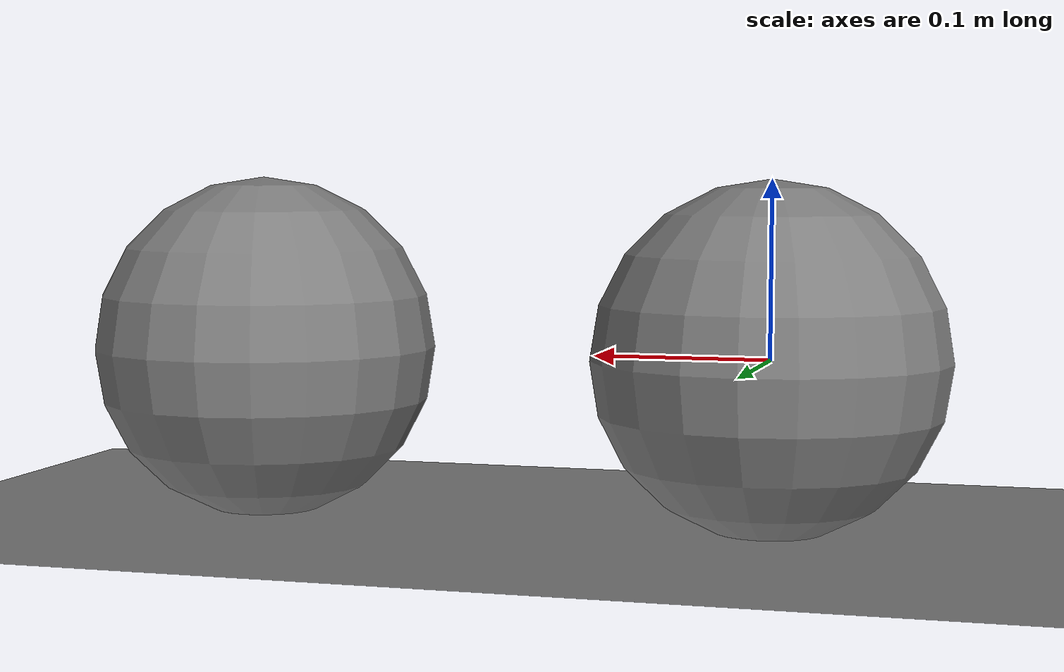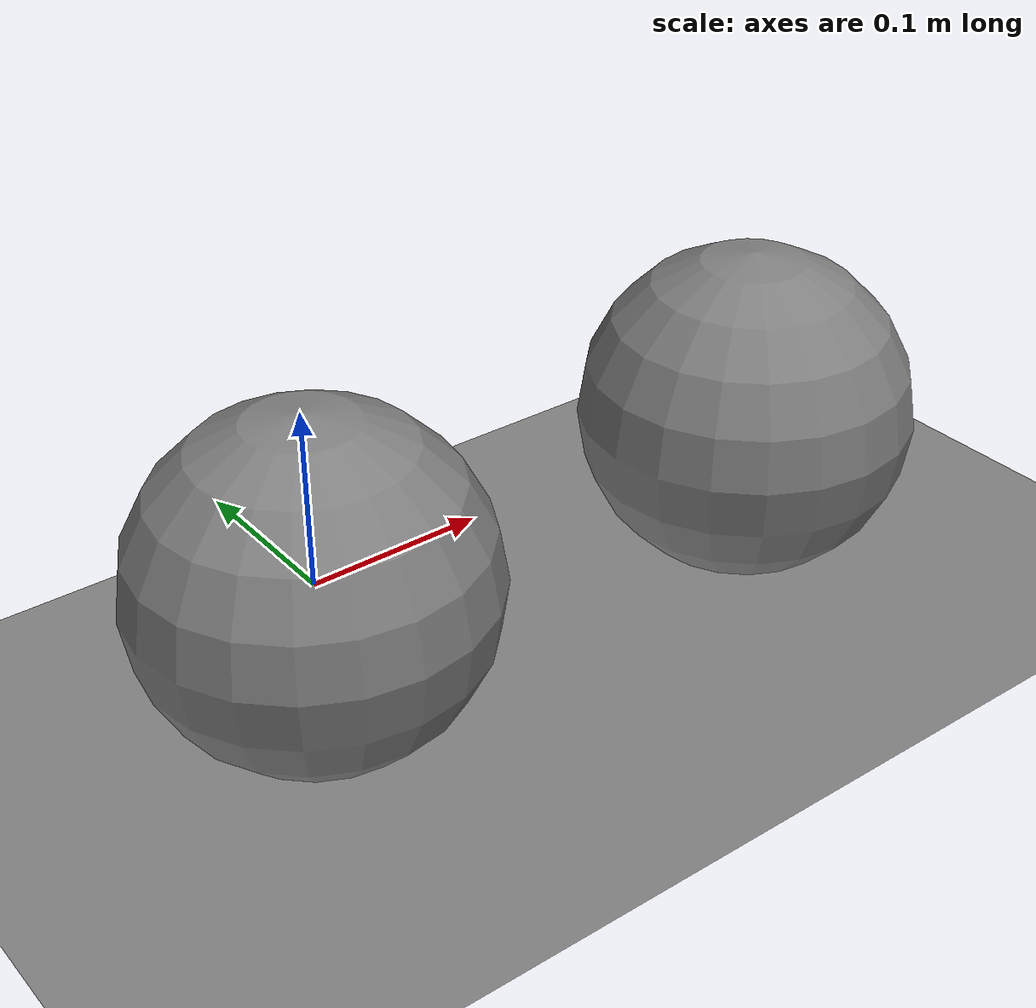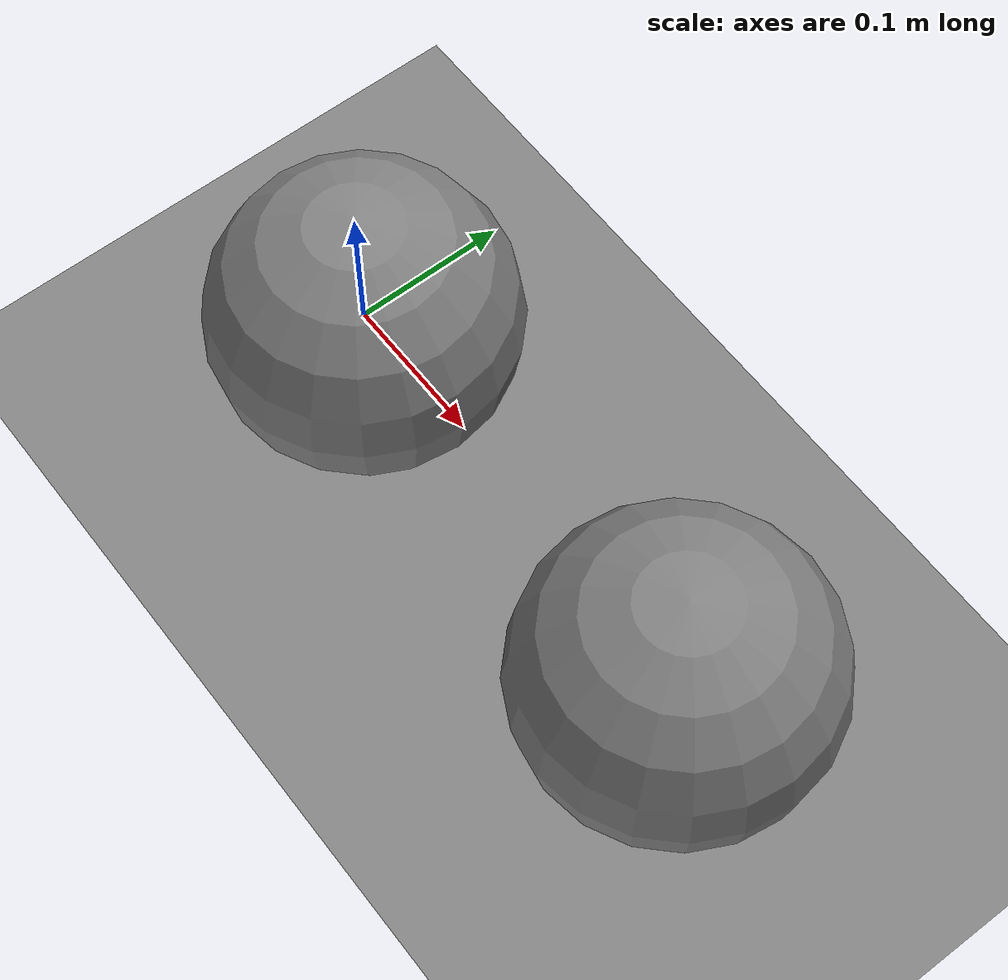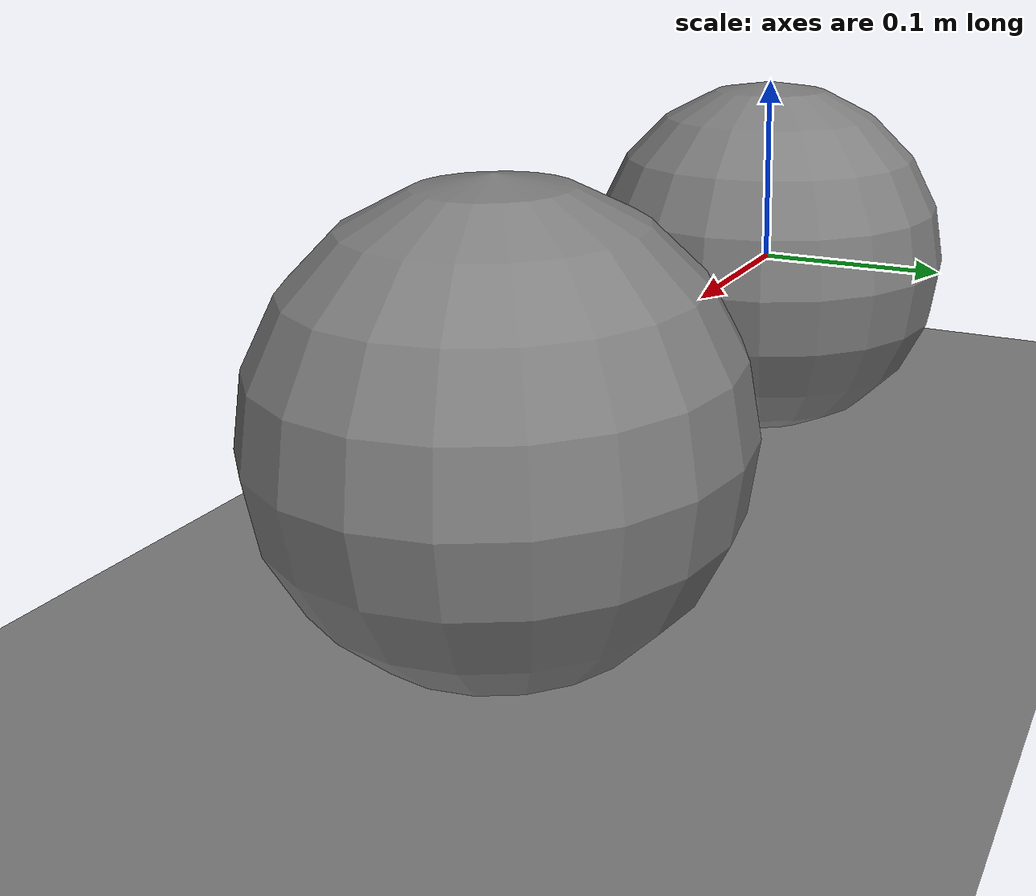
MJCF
<mujoco><option timestep=".0005" integrator="Euler" gravity="0 0 -9.81" solver="Newton" cone="pyramidal" jacobian="auto"><flag constraint="enable" actuation="disable" warmstart="disable" island="disable" /></option><worldbody><body name="carrier_0"><freejoint /><inertial pos="0 0 0" mass=".05" diaginertia=".0002 .0002 .0002" /><body><joint name="j" type="ball" limited="true" frictionloss=".002" range="0 1.5" /><geom size=".1" mass="1" /></body></body><body name="carrier_1"><freejoint /><inertial pos="0 0 0" mass=".05" diaginertia=".0002 .0002 .0002" /><body pos=".3 0 0"><joint name="s" type="slide" limited="true" frictionloss=".002" range="-.015 .015" /><geom size=".1" /></body></body><geom name="controller_floor" type="plane" size="3 3 .1" pos="0 0 -.095" friction=".6 .01 .001" condim="3" /></worldbody><actuator><motor joint="s" gear=".2" /><general joint="s" dyntype="filterexact" dynprm=".02" gainprm=".4" /><pid joint="s" kp="3" kv=".4" ki=".7" imax=".5" input="pos vel ff" /><dcmotor joint="s" motorconst=".2" resistance="2" input="voltage" inductance="0 .02" /><general joint="j" input="expmap" dyntype="integrator" gaintype="so3" biastype="so3" actdim="3" gainprm="4" biasprm="0 -4.0 -0.3" /></actuator></mujoco>
